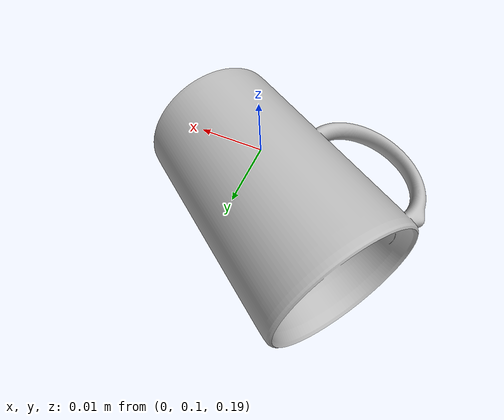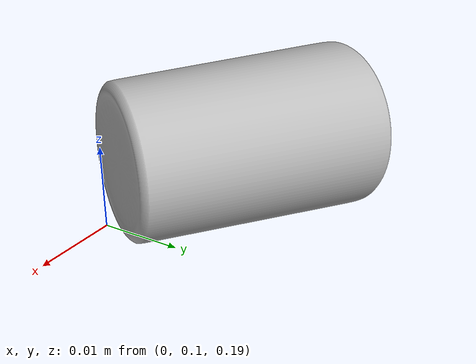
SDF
<?xml version="1.0"?>
<sdf version="1.5">
    <model name="teacup_model">
        <pose>0 0.1 0.2 0 0 1</pose>
        <static>false</static>
        <link name="body">
            <collision name="collision">
                <geometry>
                     <box><size>0.0280866 0.0281665 0.0197164</size></box>
                </geometry>
            </collision>
            <inertial>
                <mass>.8</mass>
                <inertia>
                    <ixx>.000557</ixx>
                    <ixy>0</ixy>
                    <ixz>0</ixz>
                    <iyy>.000920</iyy>
                    <iyz>0</iyz>
                    <izz>.000997</izz>
                </inertia>
            </inertial>
            <visual name="visual">
                <geometry>

		            <mesh>
		                <uri>TeaCup.obj</uri>
		                <scale>.01 .01 .01</scale>
		            </mesh>
                </geometry>
            </visual>
        </link>
    </model>
</sdf>
